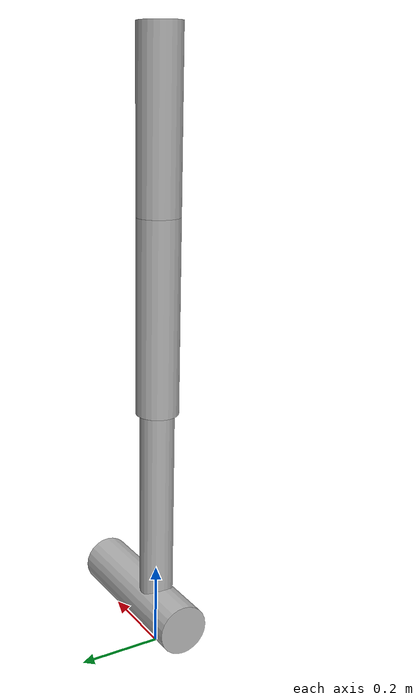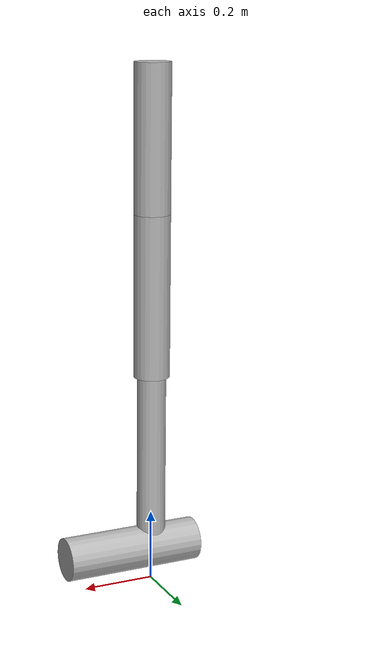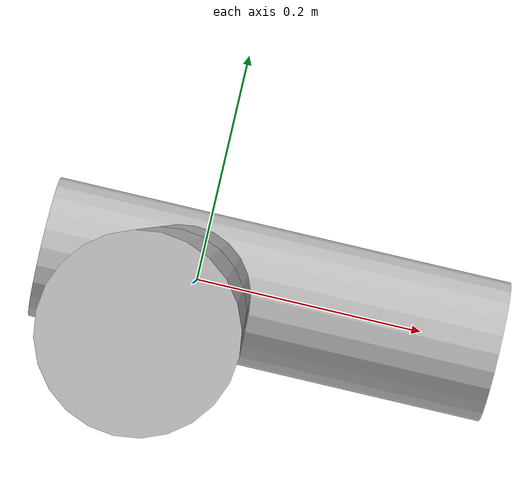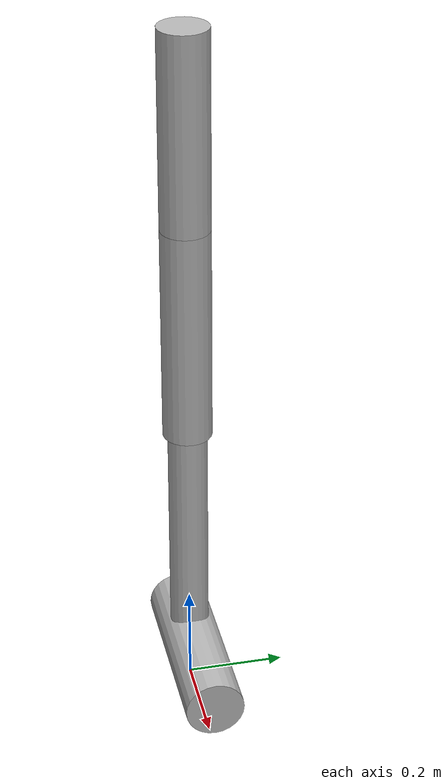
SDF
<?xml version='1.0'?>
<sdf version='1.4'>
  <model name="hopper">
    <static>false</static>
    <link name='torso'>
    <pose>0.0 0.0 1.25 0.0 0.0 0.0</pose>

      <inertial>
        <pose>0.0 0.0 0.0 0 0.0 0.0</pose>
        <mass>4</mass>
        <!-- Link mass is centered -->
        <inertia>
          <ixx>0.01</ixx>
          <ixy>0.0</ixy>
          <ixz>0.0</ixz>
          <iyy>0.01</iyy>
          <iyz>0.0</iyz>
          <izz>0.01</izz>
        </inertia>
      </inertial>

      <collision name='torso_collision'>
        <pose>0.0 0.0 0.0 0 0.0 0.0</pose>
        <geometry>
          <cylinder>
            <length>0.40</length>
            <radius>0.05</radius>
          </cylinder>
        </geometry>
      </collision>

      <visual name='torso_visual'>
        <pose>0.0 0.0 0.0 0.0 0.0 0.0</pose>
        <geometry>
          <cylinder>
            <length>0.40</length>
            <radius>0.05</radius>
          </cylinder>
        </geometry>
      </visual>
    </link>

    <link name='thigh'>
    <pose>0.0 0.0 0.825 0.0 0.0 0.0</pose>

      <inertial>
        <pose>0.0 0.0 0.0 0 0.0 0.0</pose>
        <mass>3</mass>
        <!-- Link mass is centered -->
        <inertia>
          <ixx>0.01</ixx>
          <ixy>0.0</ixy>
          <ixz>0.0</ixz>
          <iyy>0.01</iyy>
          <iyz>0.0</iyz>
          <izz>0.01</izz>
        </inertia>
      </inertial>

      <collision name='thigh_collision'>
        <pose>0.0 0.0 0.0 0 0.0 0.0</pose>
        <geometry>
          <cylinder>
            <length>0.45</length>
            <radius>0.05</radius>
          </cylinder>
        </geometry>
      </collision>

      <visual name='thigh_visual'>
        <pose>0.0 0.0 0.0 0 0.0 0.0</pose>
        <geometry>
          <cylinder>
            <length>0.45</length>
            <radius>0.05</radius>
          </cylinder>
        </geometry>
      </visual>
    </link>
    <joint type="revolute" name="hip">
      <pose>0 0 0.225 0 0 0</pose>
      <child>thigh</child>
      <parent>torso</parent>
      <axis>
        <xyz> 0 1 0 </xyz>
        <limit>
          <lower> 0 </lower>
          <upper> 2.617991667 </upper>
          <velocity> 0.5 </velocity>
          <effort> 1000 </effort>
        </limit>
      </axis>
    </joint>

    <link name='leg'>
    <pose>0.0 0.0 0.35 0.0 0.0 0.0</pose>

      <inertial>
        <pose>0.0 0.0 0.0 0 0.0 0.0</pose>
        <mass>2.5</mass>
        <!-- Link mass is centered -->
        <inertia>
          <ixx>0.01</ixx>
          <ixy>0.0</ixy>
          <ixz>0.0</ixz>
          <iyy>0.01</iyy>
          <iyz>0.0</iyz>
          <izz>0.01</izz>
        </inertia>
      </inertial>

      <collision name='leg_collision'>
        <pose>0.0 0.0 0 0 0.0 0.0</pose>
        <geometry>
          <cylinder>
            <length>0.50</length>
            <radius>0.04</radius>
          </cylinder>
        </geometry>
      </collision>

      <visual name='leg_visual'>
        <pose>0.0 0.0 0 0 0.0 0.0</pose>
        <geometry>
          <cylinder>
            <length>0.50</length>
            <radius>0.04</radius>
          </cylinder>
        </geometry>
      </visual>
    </link>
    <joint type="revolute" name="knee">
      <pose>0 0 0.25 0 0 1.57</pose>
      <child>leg</child>
      <parent>thigh</parent>
      <axis>
        <xyz> 0 1 0 </xyz>
        <limit>
          <lower> 0 </lower>
          <upper> 2.617991667 </upper>
          <velocity> 0.5 </velocity>
          <effort> 1000 </effort>
        </limit>
      </axis>
    </joint>

    <link name='foot'>
    <pose>0.065 0.0 0.1 0.0 0.0 0.0</pose>

      <inertial>
        <mass>1</mass>
        <pose>0.0 0.0 0.0 0.0 0.0 0.0</pose>
        <!-- Link mass is centered -->
        <inertia>
          <ixx>0.01</ixx>
          <ixy>0.0</ixy>
          <ixz>0.0</ixz>
          <iyy>0.01</iyy>
          <iyz>0.0</iyz>
          <izz>0.01</izz>
        </inertia>
      </inertial>

      <collision name='foot_collision'>
        <pose>0.0 0.0 0.0 0 -1.570796 0.0</pose>
        <geometry>
          <cylinder>
            <length>0.39</length>
            <radius>0.06</radius>
          </cylinder>
        </geometry>
        <surface>
          <friction>
            <bullet>
              <friction> 0.6 </friction>
              <friction2> 0.6 </friction2>
              <fdir1> 0 0 0 </fdir1>
              <rolling_friction> 1 </rolling_friction>
            </bullet>
          </friction>
        </surface>
      </collision>

      <visual name='foot_visual'>
        <pose>0.0 0.0 0.0 0 -1.570796 0.0</pose>
        <geometry>
          <cylinder>
            <length>0.39</length>
            <radius>0.06</radius>
          </cylinder>
        </geometry>
      </visual>
    </link>
    <joint type="revolute" name="ankle">
      <pose>-0.065 0 0 0 0 0</pose>
      <child>foot</child>
      <parent>leg</parent>
      <axis>
        <xyz> 0 1 0 </xyz>
        <limit>
          <lower> -0.7853975 </lower>
          <upper> 0.7853975 </upper>
          <velocity> 0.5 </velocity>
          <effort> 1000 </effort>
        </limit>
      </axis>
    </joint>

  </model>
</sdf>
